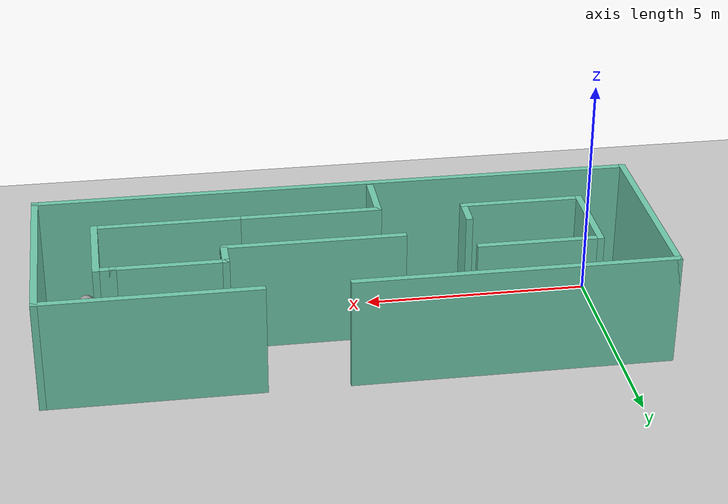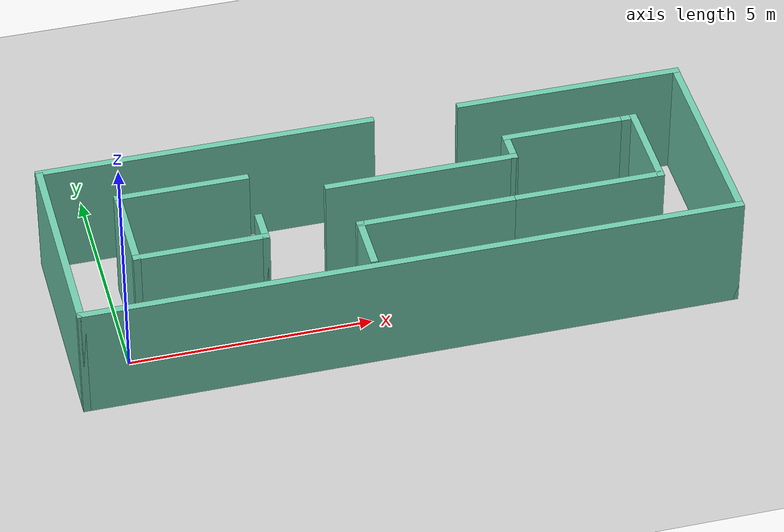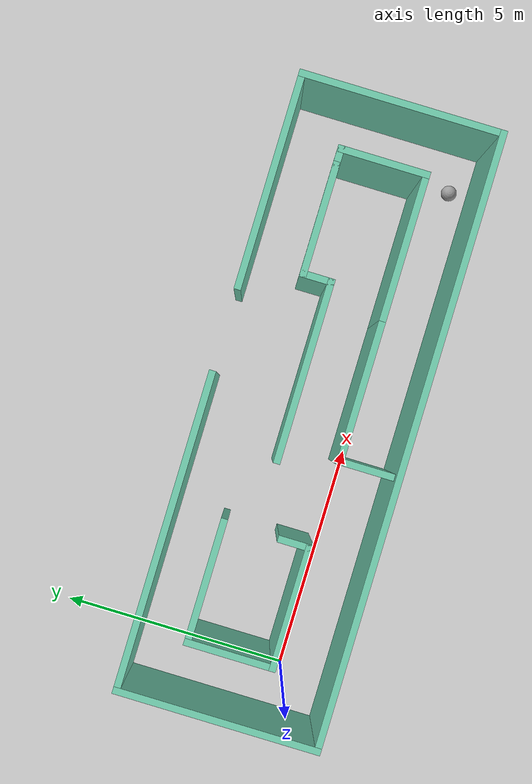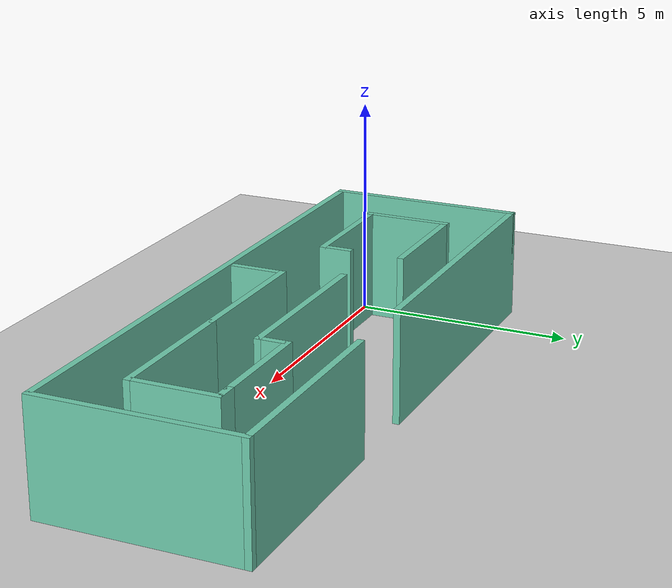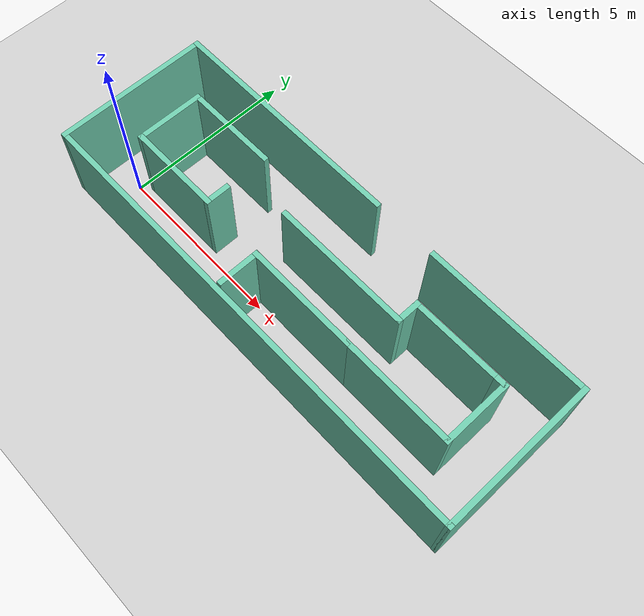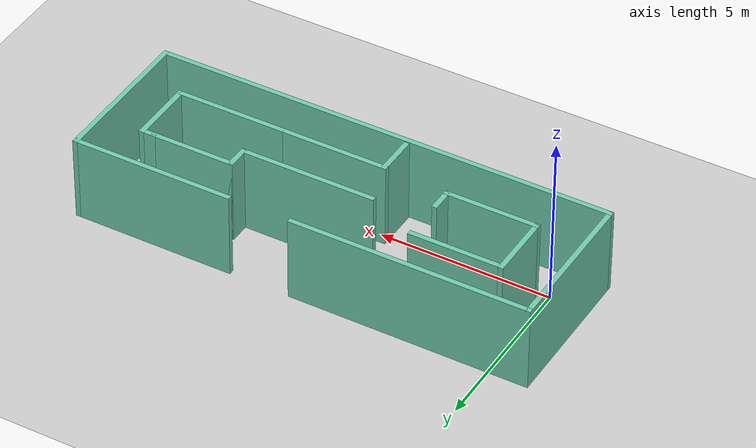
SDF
<sdf version="1.7">
 <world name="default">
  <light name="sun" type="directional">
   <pose>0 0 10 0 -0 0</pose>
   <diffuse>0.8 0.8 0.8 1</diffuse>
   <specular>0.2 0.2 0.2 1</specular>
   <attenuation>
    <range>1000</range>
    <constant>0.9</constant>
    <linear>0.01</linear>
    <quadratic>0.001</quadratic>
   </attenuation>
   <direction>-0.5 0.1 -0.9</direction>
   <spot><inner_angle>0</inner_angle><outer_angle>0</outer_angle><falloff>0</falloff></spot>
  </light>
  <model name="ground_plane">
   <static>1</static>
   <link name="link">
    <collision name="collision">
     <geometry><plane><normal>0 0 1</normal><size>100 100</size></plane></geometry>
     <surface>
      <contact><collide_bitmask>65535</collide_bitmask></contact>
      <friction><ode><mu>100</mu><mu2>50</mu2></ode></friction>
     </surface>
    </collision>
    <visual name="visual">
     <cast_shadows>0</cast_shadows>
     <geometry><plane><normal>0 0 1</normal><size>100 100</size></plane></geometry>
     <material>
      <script><uri>file://media/materials/scripts/gazebo.material</uri><name>Gazebo/Grey</name></script>
     </material>
    </visual>
   </link>
  </model>
  <gravity>0 0 -9.8</gravity>
  <magnetic_field>6e-06 2.3e-05 -4.2e-05</magnetic_field>
  <atmosphere type="adiabatic"/>
  <physics type="ode">
   <max_step_size>0.001</max_step_size>
   <real_time_factor>1</real_time_factor>
   <real_time_update_rate>1000</real_time_update_rate>
  </physics>
  <scene><ambient>0.4 0.4 0.4 1</ambient><background>0.7 0.7 0.7 1</background><shadows>1</shadows></scene>
  <spherical_coordinates>
   <surface_model>EARTH_WGS84</surface_model>
   <latitude_deg>0</latitude_deg>
   <longitude_deg>0</longitude_deg>
   <elevation>0</elevation>
   <heading_deg>0</heading_deg>
  </spherical_coordinates>
  <model name="little-room">
   <pose>5.6041 1.14342 0 0 -0 0</pose>
   <link name="Wall_12">
    <collision name="Wall_12_Collision">
     <geometry><box><size>4.5 0.15 2.5</size></box></geometry>
     <pose>0 0 1.25 0 -0 0</pose>
    </collision>
    <visual name="Wall_12_Visual">
     <pose>0 0 1.25 0 -0 0</pose>
     <geometry><box><size>4.5 0.15 2.5</size></box></geometry>
     <material>
      <script><uri>file://media/materials/scripts/gazebo.material</uri><name>Gazebo/Grey</name></script>
      <ambient>0.435294 0.796078 0.67451 1</ambient>
     </material>
     <meta><layer>0</layer></meta>
    </visual>
    <pose>-6.675 -0.0525 0 0 -0 1.5708</pose>
   </link>
   <link name="Wall_13">
    <collision name="Wall_13_Collision">
     <geometry><box><size>7 0.15 2.5</size></box></geometry>
     <pose>0 0 1.25 0 -0 0</pose>
    </collision>
    <visual name="Wall_13_Visual">
     <pose>0 0 1.25 0 -0 0</pose>
     <geometry><box><size>7 0.15 2.5</size></box></geometry>
     <material>
      <script><uri>file://media/materials/scripts/gazebo.material</uri><name>Gazebo/Grey</name></script>
      <ambient>0.435294 0.796078 0.67451 1</ambient>
     </material>
     <meta><layer>0</layer></meta>
    </visual>
    <pose>-3.25 2.1225 0 0 -0 0</pose>
   </link>
   <link name="Wall_16">
    <collision name="Wall_16_Collision">
     <geometry><box><size>2.75 0.15 2.5</size></box></geometry>
     <pose>0 0 1.25 0 -0 0</pose>
    </collision>
    <visual name="Wall_16_Visual">
     <pose>0 0 1.25 0 -0 0</pose>
     <geometry><box><size>2.75 0.15 2.5</size></box></geometry>
     <material>
      <script><uri>file://media/materials/scripts/gazebo.material</uri><name>Gazebo/Grey</name></script>
      <ambient>0.435294 0.796078 0.67451 1</ambient>
     </material>
     <meta><layer>0</layer></meta>
    </visual>
    <pose>-3.99185 -0.849499 0 0 -0 0</pose>
   </link>
   <link name="Wall_17">
    <collision name="Wall_17_Collision">
     <geometry><box><size>0.75 0.15 2.5</size></box></geometry>
     <pose>0 0 1.25 0 -0 0</pose>
    </collision>
    <visual name="Wall_17_Visual">
     <pose>0 0 1.25 0 -0 0</pose>
     <geometry><box><size>0.75 0.15 2.5</size></box></geometry>
     <material>
      <script><uri>file://media/materials/scripts/gazebo.material</uri><name>Gazebo/Grey</name></script>
      <ambient>0.435294 0.796078 0.67451 1</ambient>
     </material>
     <meta><layer>0</layer></meta>
    </visual>
    <pose>-2.69185 -0.5495 0 0 -0 1.5708</pose>
   </link>
   <link name="Wall_19">
    <collision name="Wall_19_Collision">
     <geometry><box><size>2 0.15 2.5</size></box></geometry>
     <pose>0 0 1.25 0 -0 0</pose>
    </collision>
    <visual name="Wall_19_Visual">
     <pose>0 0 1.25 0 -0 0</pose>
     <geometry><box><size>2 0.15 2.5</size></box></geometry>
     <material>
      <script><uri>file://media/materials/scripts/gazebo.material</uri><name>Gazebo/Grey</name></script>
      <ambient>0.435294 0.796078 0.67451 1</ambient>
     </material>
     <meta><layer>0</layer></meta>
    </visual>
    <pose>-5.29185 0.0755 0 0 -0 1.5708</pose>
   </link>
   <link name="Wall_2">
    <collision name="Wall_2_Collision">
     <geometry><box><size>13.5 0.15 2.5</size></box></geometry>
     <pose>0 0 1.25 0 -0 0</pose>
    </collision>
    <visual name="Wall_2_Visual">
     <pose>0 0 1.25 0 -0 0</pose>
     <geometry><box><size>13.5 0.15 2.5</size></box></geometry>
     <material>
      <script><uri>file://media/materials/scripts/gazebo.material</uri><name>Gazebo/Grey</name></script>
      <ambient>0.435294 0.796078 0.67451 1</ambient>
     </material>
     <meta><layer>0</layer></meta>
    </visual>
    <pose>0 -2.2275 0 0 -0 0</pose>
   </link>
   <link name="Wall_20">
    <collision name="Wall_20_Collision">
     <geometry><box><size>2.75 0.15 2.5</size></box></geometry>
     <pose>0 0 1.25 0 -0 0</pose>
    </collision>
    <visual name="Wall_20_Visual">
     <pose>0 0 1.25 0 -0 0</pose>
     <geometry><box><size>2.75 0.15 2.5</size></box></geometry>
     <material>
      <script><uri>file://media/materials/scripts/gazebo.material</uri><name>Gazebo/Grey</name></script>
      <ambient>0.435294 0.796078 0.67451 1</ambient>
     </material>
     <meta><layer>0</layer></meta>
    </visual>
    <pose>-3.99185 1.0005 0 0 -0 0</pose>
   </link>
   <link name="Wall_22">
    <collision name="Wall_22_Collision">
     <geometry><box><size>4 0.15 2.5</size></box></geometry>
     <pose>0 0 1.25 0 -0 0</pose>
    </collision>
    <visual name="Wall_22_Visual">
     <pose>0 0 1.25 0 -0 0</pose>
     <geometry><box><size>4 0.15 2.5</size></box></geometry>
     <material>
      <script><uri>file://media/materials/scripts/gazebo.material</uri><name>Gazebo/Grey</name></script>
      <ambient>0.435294 0.796078 0.67451 1</ambient>
     </material>
     <meta><layer>0</layer></meta>
    </visual>
    <pose>0.782783 0.303492 0 0 -0 0</pose>
   </link>
   <link name="Wall_23">
    <collision name="Wall_23_Collision">
     <geometry><box><size>0.75 0.15 2.5</size></box></geometry>
     <pose>0 0 1.25 0 -0 0</pose>
    </collision>
    <visual name="Wall_23_Visual">
     <pose>0 0 1.25 0 -0 0</pose>
     <geometry><box><size>0.75 0.15 2.5</size></box></geometry>
     <material>
      <script><uri>file://media/materials/scripts/gazebo.material</uri><name>Gazebo/Grey</name></script>
      <ambient>0.435294 0.796078 0.67451 1</ambient>
     </material>
     <meta><layer>0</layer></meta>
    </visual>
    <pose>2.70778 0.603492 0 0 -0 1.5708</pose>
   </link>
   <link name="Wall_24">
    <collision name="Wall_24_Collision">
     <geometry><box><size>2.5 0.15 2.5</size></box></geometry>
     <pose>0 0 1.25 0 -0 0</pose>
    </collision>
    <visual name="Wall_24_Visual">
     <pose>0 0 1.25 0 -0 0</pose>
     <geometry><box><size>2.5 0.15 2.5</size></box></geometry>
     <material>
      <script><uri>file://media/materials/scripts/gazebo.material</uri><name>Gazebo/Grey</name></script>
      <ambient>0.435294 0.796078 0.67451 1</ambient>
     </material>
     <meta><layer>0</layer></meta>
    </visual>
    <pose>3.88278 0.903492 0 0 -0 0</pose>
   </link>
   <link name="Wall_25">
    <collision name="Wall_25_Collision">
     <geometry><box><size>0.5 0.15 2.5</size></box></geometry>
     <pose>0 0 1.25 0 -0 0</pose>
    </collision>
    <visual name="Wall_25_Visual">
     <pose>0 0 1.25 0 -0 0</pose>
     <geometry><box><size>0.5 0.15 2.5</size></box></geometry>
     <material>
      <script><uri>file://media/materials/scripts/gazebo.material</uri><name>Gazebo/Grey</name></script>
      <ambient>0.435294 0.796078 0.67451 1</ambient>
     </material>
     <meta><layer>0</layer></meta>
    </visual>
    <pose>5.23278 0.903492 0 0 -0 0</pose>
   </link>
   <link name="Wall_26">
    <collision name="Wall_26_Collision">
     <geometry><box><size>2 0.15 2.5</size></box></geometry>
     <pose>0 0 1.25 0 -0 0</pose>
    </collision>
    <visual name="Wall_26_Visual">
     <pose>0 0 1.25 0 -0 0</pose>
     <geometry><box><size>2 0.15 2.5</size></box></geometry>
     <material>
      <script><uri>file://media/materials/scripts/gazebo.material</uri><name>Gazebo/Grey</name></script>
      <ambient>0.435294 0.796078 0.67451 1</ambient>
     </material>
     <meta><layer>0</layer></meta>
    </visual>
    <pose>5.40778 -0.021508 0 0 -0 -1.5708</pose>
   </link>
   <link name="Wall_27">
    <collision name="Wall_27_Collision">
     <geometry><box><size>3.25 0.15 2.5</size></box></geometry>
     <pose>0 0 1.25 0 -0 0</pose>
    </collision>
    <visual name="Wall_27_Visual">
     <pose>0 0 1.25 0 -0 0</pose>
     <geometry><box><size>3.25 0.15 2.5</size></box></geometry>
     <material>
      <script><uri>file://media/materials/scripts/gazebo.material</uri><name>Gazebo/Grey</name></script>
      <ambient>0.435294 0.796078 0.67451 1</ambient>
     </material>
     <meta><layer>0</layer></meta>
    </visual>
    <pose>3.85778 -0.946508 0 0 -0 3.14159</pose>
   </link>
   <link name="Wall_3">
    <collision name="Wall_3_Collision">
     <geometry><box><size>4.5 0.15 2.5</size></box></geometry>
     <pose>0 0 1.25 0 -0 0</pose>
    </collision>
    <visual name="Wall_3_Visual">
     <pose>0 0 1.25 0 -0 0</pose>
     <geometry><box><size>4.5 0.15 2.5</size></box></geometry>
     <material>
      <script><uri>file://media/materials/scripts/gazebo.material</uri><name>Gazebo/Grey</name></script>
      <ambient>0.435294 0.796078 0.67451 1</ambient>
     </material>
     <meta><layer>0</layer></meta>
    </visual>
    <pose>6.675 -0.0525 0 0 -0 1.5708</pose>
   </link>
   <link name="Wall_32">
    <collision name="Wall_32_Collision">
     <geometry><box><size>3.25 0.15 2.5</size></box></geometry>
     <pose>0 0 1.25 0 -0 0</pose>
    </collision>
    <visual name="Wall_32_Visual">
     <pose>0 0 1.25 0 -0 0</pose>
     <geometry><box><size>3.25 0.15 2.5</size></box></geometry>
     <material>
      <script><uri>file://media/materials/scripts/gazebo.material</uri><name>Gazebo/Grey</name></script>
      <ambient>0.435294 0.796078 0.67451 1</ambient>
     </material>
     <meta><layer>0</layer></meta>
    </visual>
    <pose>0.757783 -0.946508 0 0 -0 3.14159</pose>
   </link>
   <link name="Wall_33">
    <collision name="Wall_33_Collision">
     <geometry><box><size>1.25 0.15 2.5</size></box></geometry>
     <pose>0 0 1.25 0 -0 0</pose>
    </collision>
    <visual name="Wall_33_Visual">
     <pose>0 0 1.25 0 -0 0</pose>
     <geometry><box><size>1.25 0.15 2.5</size></box></geometry>
     <material>
      <script><uri>file://media/materials/scripts/gazebo.material</uri><name>Gazebo/Grey</name></script>
      <ambient>0.435294 0.796078 0.67451 1</ambient>
     </material>
     <meta><layer>0</layer></meta>
    </visual>
    <pose>-0.792217 -1.49651 0 0 -0 -1.5708</pose>
   </link>
   <link name="Wall_4">
    <collision name="Wall_4_Collision">
     <geometry><box><size>4.75 0.15 2.5</size></box></geometry>
     <pose>0 0 1.25 0 -0 0</pose>
    </collision>
    <visual name="Wall_4_Visual">
     <pose>0 0 1.25 0 -0 0</pose>
     <geometry><box><size>4.75 0.15 2.5</size></box></geometry>
     <material>
      <script><uri>file://media/materials/scripts/gazebo.material</uri><name>Gazebo/Grey</name></script>
      <ambient>0.435294 0.796078 0.67451 1</ambient>
     </material>
     <meta><layer>0</layer></meta>
    </visual>
    <pose>4.375 2.1225 0 0 -0 3.14159</pose>
   </link>
   <static>1</static>
  </model>
  <model name="unit_sphere">
   <pose>11.2973 -0.593886 0.175713 0 -0 0</pose>
   <link name="link">
    <inertial>
     <mass>1</mass>
     <inertia><ixx>0.1</ixx><ixy>0</ixy><ixz>0</ixz><iyy>0.1</iyy><iyz>0</iyz><izz>0.1</izz></inertia>
    </inertial>
    <collision name="collision"><geometry><sphere><radius>0.175713</radius></sphere></geometry></collision>
    <visual name="visual">
     <geometry><sphere><radius>0.175713</radius></sphere></geometry>
     <material>
      <script><name>Gazebo/Grey</name><uri>file://media/materials/scripts/gazebo.material</uri></script>
     </material>
    </visual>
   </link>
  </model>
 </world>
</sdf>
